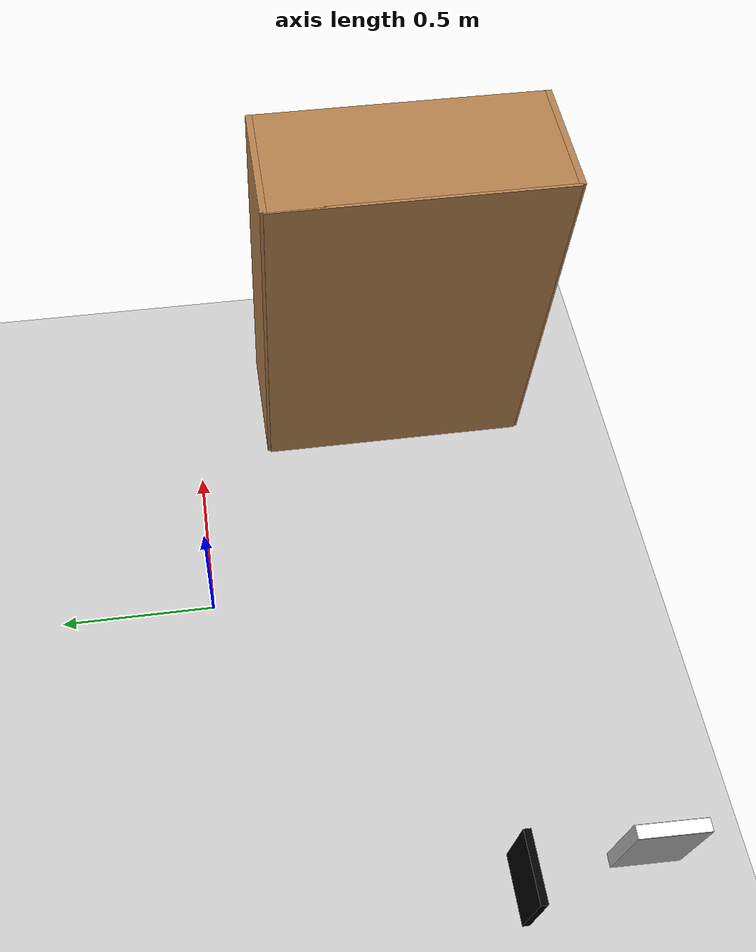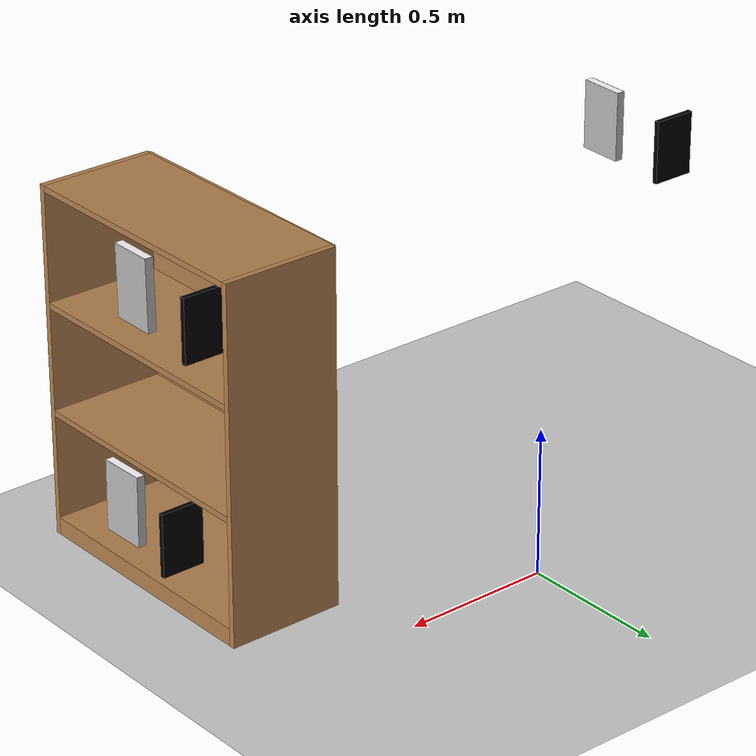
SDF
<sdf version="1.7">
 <world name="default">
  <model name="ground_plane">
   <static>1</static>
   <link name="link">
    <collision name="collision">
     <geometry><plane><normal>0 0 1</normal><size>100 100</size></plane></geometry>
     <surface><friction><ode><mu>100</mu><mu2>50</mu2></ode></friction></surface>
    </collision>
    <visual name="visual">
     <cast_shadows>0</cast_shadows>
     <geometry><plane><normal>0 0 1</normal><size>100 100</size></plane></geometry>
     <material>
      <script><uri>file://media/materials/scripts/gazebo.material</uri><name>Gazebo/Grey</name></script>
     </material>
    </visual>
   </link>
  </model>
  <model name="bookshelf_clone_8">
   <static>1</static>
   <link name="link">
    <inertial><mass>1</mass></inertial>
    <collision name="back">
     <pose>0 0.005 0.6 0 -0 0</pose>
     <geometry><box><size>0.9 0.01 1.2</size></box></geometry>
    </collision>
    <visual name="visual1">
     <pose>0 0.005 0.6 0 -0 0</pose>
     <geometry><box><size>0.9 0.01 1.2</size></box></geometry>
     <material>
      <script><uri>file://media/materials/scripts/gazebo.material</uri><name>Gazebo/Wood</name></script>
     </material>
    </visual>
    <collision name="left_side">
     <pose>0.45 -0.195 0.6 0 -0 0</pose>
     <geometry><box><size>0.02 0.4 1.2</size></box></geometry>
    </collision>
    <visual name="visual2">
     <pose>0.45 -0.195 0.6 0 -0 0</pose>
     <geometry><box><size>0.02 0.4 1.2</size></box></geometry>
     <material>
      <script><uri>file://media/materials/scripts/gazebo.material</uri><name>Gazebo/Wood</name></script>
     </material>
    </visual>
    <collision name="right_side">
     <pose>-0.45 -0.195 0.6 0 -0 0</pose>
     <geometry><box><size>0.02 0.4 1.2</size></box></geometry>
    </collision>
    <visual name="visual3">
     <pose>-0.45 -0.195 0.6 0 -0 0</pose>
     <geometry><box><size>0.02 0.4 1.2</size></box></geometry>
     <material>
      <script><uri>file://media/materials/scripts/gazebo.material</uri><name>Gazebo/Wood</name></script>
     </material>
    </visual>
    <collision name="bottom">
     <pose>0 -0.195 0.03 0 -0 0</pose>
     <geometry><box><size>0.88 0.4 0.06</size></box></geometry>
    </collision>
    <visual name="visual4">
     <pose>0 -0.195 0.03 0 -0 0</pose>
     <geometry><box><size>0.88 0.4 0.06</size></box></geometry>
     <material>
      <script><uri>file://media/materials/scripts/gazebo.material</uri><name>Gazebo/Wood</name></script>
     </material>
    </visual>
    <collision name="top">
     <pose>0 -0.195 1.19 0 -0 0</pose>
     <geometry><box><size>0.88 0.4 0.02</size></box></geometry>
    </collision>
    <visual name="visual5">
     <pose>0 -0.195 1.19 0 -0 0</pose>
     <geometry><box><size>0.88 0.4 0.02</size></box></geometry>
     <material>
      <script><uri>file://media/materials/scripts/gazebo.material</uri><name>Gazebo/Wood</name></script>
     </material>
    </visual>
    <collision name="low_shelf">
     <pose>0 -0.195 0.43 0 -0 0</pose>
     <geometry><box><size>0.88 0.4 0.02</size></box></geometry>
    </collision>
    <visual name="visual6">
     <pose>0 -0.195 0.43 0 -0 0</pose>
     <geometry><box><size>0.88 0.4 0.02</size></box></geometry>
     <material>
      <script><uri>file://media/materials/scripts/gazebo.material</uri><name>Gazebo/Wood</name></script>
     </material>
    </visual>
    <collision name="high_shelf">
     <pose>0 -0.195 0.8 0 -0 0</pose>
     <geometry><box><size>0.88 0.4 0.02</size></box></geometry>
    </collision>
    <visual name="visual7">
     <pose>0 -0.195 0.8 0 -0 0</pose>
     <geometry><box><size>0.88 0.4 0.02</size></box></geometry>
     <material>
      <script><uri>file://media/materials/scripts/gazebo.material</uri><name>Gazebo/Wood</name></script>
     </material>
    </visual>
   </link>
   <pose>0.601754 -0.705437 0 0 -0 1.57111</pose>
  </model>
  <model name="book_12">
   <link name="cover">
    <pose>0 -0.000108 0.015405 0 -0 0</pose>
    <visual name="visual">
     <geometry><box><size>0.245 0.16 0.03</size></box></geometry>
     <material>
      <script>
       <uri>file:///home/bruno/Downloads/lib_world_models/book_12/materials/scripts</uri>
       <uri>file:///home/bruno/Downloads/lib_world_models/book_12/materials/textures</uri>
       <name>book_12</name>
      </script>
     </material>
    </visual>
    <collision name="collision"><geometry><box><size>0.245 0.16 0.03</size></box></geometry></collision>
   </link>
   <link name="page">
    <pose>0 0.000608 0.015405 0 -0 0</pose>
    <visual name="visual">
     <geometry><box><size>0.24502 0.15862 0.028</size></box></geometry>
     <material>
      <lighting>1</lighting>
      <ambient>1 1 1 1</ambient>
      <diffuse>1 1 1 1</diffuse>
      <specular>0.01 0.01 0.01 1</specular>
      <emissive>0 0 0 1</emissive>
      <shader type="vertex"><normal_map>__default__</normal_map></shader>
     </material>
    </visual>
    <collision name="collision"><geometry><box><size>0.245 0.16 0.03</size></box></geometry></collision>
   </link>
   <static>1</static>
   <pose>0.870437 -0.843437 0.940109 -1.57176 -1.5489 -1.60364</pose>
  </model>
  <model name="book_13">
   <link name="cover">
    <pose>0 -0.000108 0.015405 0 -0 0</pose>
    <visual name="visual">
     <geometry><box><size>0.245 0.16 0.03</size></box></geometry>
     <material>
      <script>
       <uri>file:///home/bruno/Downloads/lib_world_models/book_13/materials/scripts</uri>
       <uri>file:///home/bruno/Downloads/lib_world_models/book_13/materials/textures</uri>
       <name>book_13</name>
      </script>
     </material>
    </visual>
    <collision name="collision"><geometry><box><size>0.245 0.16 0.03</size></box></geometry></collision>
   </link>
   <link name="page">
    <pose>0 0.000608 0.015405 0 -0 0</pose>
    <visual name="visual">
     <geometry><box><size>0.24502 0.15862 0.028</size></box></geometry>
     <material>
      <lighting>1</lighting>
      <ambient>1 1 1 1</ambient>
      <diffuse>1 1 1 1</diffuse>
      <specular>0.01 0.01 0.01 1</specular>
      <emissive>0 0 0 1</emissive>
      <shader type="vertex"><normal_map>__default__</normal_map></shader>
     </material>
    </visual>
    <collision name="collision"><geometry><box><size>0.245 0.16 0.03</size></box></geometry></collision>
   </link>
   <static>1</static>
   <pose>0.892336 -0.906318 0.18544 0 -1.5615 -3.12136</pose>
  </model>
  <model name="book_18">
   <link name="cover">
    <pose>0 -0.000108 0.015405 0 -0 0</pose>
    <visual name="visual">
     <geometry><box><size>0.245 0.16 0.03</size></box></geometry>
     <material>
      <script>
       <uri>file:///home/bruno/Downloads/lib_world_models/book_18/materials/scripts</uri>
       <uri>file:///home/bruno/Downloads/lib_world_models/book_18/materials/textures</uri>
       <name>book_18</name>
      </script>
     </material>
    </visual>
    <collision name="collision"><geometry><box><size>0.245 0.16 0.03</size></box></geometry></collision>
   </link>
   <link name="page">
    <pose>0 0.000608 0.015405 0 -0 0</pose>
    <visual name="visual">
     <geometry><box><size>0.24502 0.15862 0.028</size></box></geometry>
     <material>
      <lighting>1</lighting>
      <ambient>1 1 1 1</ambient>
      <diffuse>1 1 1 1</diffuse>
      <specular>0.01 0.01 0.01 1</specular>
      <emissive>0 0 0 1</emissive>
      <shader type="vertex"><normal_map>__default__</normal_map></shader>
     </material>
    </visual>
    <collision name="collision"><geometry><box><size>0.245 0.16 0.03</size></box></geometry></collision>
   </link>
   <static>1</static>
   <pose>-1.11941 -0.919398 0.933751 3.14159 -1.56926 -0.023229</pose>
  </model>
  <model name="retry_6_clone_1">
   <link name="link">
    <inertial>
     <mass>0.1</mass>
     <inertia>
      <ixx>0.00037145</ixx>
      <ixy>0</ixy>
      <ixz>0</ixz>
      <iyy>0.00019446</iyy>
      <iyz>0</iyz>
      <izz>0.00056106</izz>
     </inertia>
    </inertial>
    <visual name="visual">
     <geometry><box><size>0.151804 0.220309 0.017052</size></box></geometry>
     <material>
      <shader type="pixel"><normal_map>__default__</normal_map></shader>
      <script><name>ModelPreview_7::link::visual_MATERIAL_</name><uri>__default__</uri></script>
      <ambient>0 0 0 1</ambient>
      <diffuse>0 0 0 1</diffuse>
      <specular>0 0 0 1</specular>
      <emissive>0 0 0 1</emissive>
     </material>
    </visual>
    <collision name="collision">
     <geometry><box><size>0.151804 0.220309 0.017052</size></box></geometry>
     <surface>
      <friction>
       <ode><mu>3.5</mu><mu2>3.5</mu2><fdir1>0 0 0</fdir1><slip1>-0</slip1><slip2>-0</slip2></ode>
       <torsional>
        <coefficient>1</coefficient>
        <patch_radius>0</patch_radius>
        <surface_radius>0</surface_radius>
        <use_patch_radius>1</use_patch_radius>
        <ode><slip>0</slip></ode>
       </torsional>
      </friction>
      <bounce><restitution_coefficient>0</restitution_coefficient><threshold>1e+06</threshold></bounce>
      <contact>
       <collide_without_contact>0</collide_without_contact>
       <collide_without_contact_bitmask>1</collide_without_contact_bitmask>
       <collide_bitmask>1</collide_bitmask>
       <ode>
        <soft_cfm>0</soft_cfm>
        <soft_erp>0.2</soft_erp>
        <kp>1e+13</kp>
        <kd>1</kd>
        <max_vel>0.01</max_vel>
        <min_depth>0</min_depth>
       </ode>
       <bullet>
        <split_impulse>1</split_impulse>
        <split_impulse_penetration_threshold>-0.01</split_impulse_penetration_threshold>
        <soft_cfm>0</soft_cfm>
        <soft_erp>0.2</soft_erp>
        <kp>1e+13</kp>
        <kd>1</kd>
       </bullet>
      </contact>
     </surface>
    </collision>
   </link>
   <static>0</static>
   <pose>-1.13687 -0.625149 0.920155 -1.57079 -1.1e-05 0.000107</pose>
  </model>
  <model name="retry_6_clone_3">
   <link name="link">
    <inertial>
     <mass>0.1</mass>
     <inertia>
      <ixx>0.00037145</ixx>
      <ixy>0</ixy>
      <ixz>0</ixz>
      <iyy>0.00019446</iyy>
      <iyz>0</iyz>
      <izz>0.00056106</izz>
     </inertia>
    </inertial>
    <visual name="visual">
     <geometry><box><size>0.151804 0.220309 0.017052</size></box></geometry>
     <material>
      <shader type="pixel"><normal_map>__default__</normal_map></shader>
      <script><name>ModelPreview_7::link::visual_MATERIAL_</name><uri>__default__</uri></script>
      <ambient>0 0 0 1</ambient>
      <diffuse>0 0 0 1</diffuse>
      <specular>0 0 0 1</specular>
      <emissive>0 0 0 1</emissive>
     </material>
    </visual>
    <collision name="collision">
     <geometry><box><size>0.151804 0.220309 0.017052</size></box></geometry>
     <surface>
      <friction>
       <ode><mu>3.5</mu><mu2>3.5</mu2><fdir1>0 0 0</fdir1><slip1>-0</slip1><slip2>-0</slip2></ode>
       <torsional>
        <coefficient>1</coefficient>
        <patch_radius>0</patch_radius>
        <surface_radius>0</surface_radius>
        <use_patch_radius>1</use_patch_radius>
        <ode><slip>0</slip></ode>
       </torsional>
      </friction>
      <bounce><restitution_coefficient>0</restitution_coefficient><threshold>1e+06</threshold></bounce>
      <contact>
       <collide_without_contact>0</collide_without_contact>
       <collide_without_contact_bitmask>1</collide_without_contact_bitmask>
       <collide_bitmask>1</collide_bitmask>
       <ode>
        <soft_cfm>0</soft_cfm>
        <soft_erp>0.2</soft_erp>
        <kp>1e+13</kp>
        <kd>1</kd>
        <max_vel>0.01</max_vel>
        <min_depth>0</min_depth>
       </ode>
       <bullet>
        <split_impulse>1</split_impulse>
        <split_impulse_penetration_threshold>-0.01</split_impulse_penetration_threshold>
        <soft_cfm>0</soft_cfm>
        <soft_erp>0.2</soft_erp>
        <kp>1e+13</kp>
        <kd>1</kd>
       </bullet>
      </contact>
     </surface>
    </collision>
   </link>
   <static>0</static>
   <pose>0.859521 -0.54208 0.920155 -1.57079 -1.1e-05 0.000107</pose>
  </model>
  <model name="retry_6_clone_5_clone_5_clone">
   <link name="link">
    <inertial>
     <mass>0.1</mass>
     <inertia>
      <ixx>0.00037145</ixx>
      <ixy>0</ixy>
      <ixz>0</ixz>
      <iyy>0.00019446</iyy>
      <iyz>0</iyz>
      <izz>0.00056106</izz>
     </inertia>
    </inertial>
    <visual name="visual">
     <geometry><box><size>0.151804 0.220309 0.017052</size></box></geometry>
     <material>
      <shader type="pixel"><normal_map>__default__</normal_map></shader>
      <script><name>ModelPreview_7::link::visual_MATERIAL_</name><uri>__default__</uri></script>
      <ambient>0 0 0 1</ambient>
      <diffuse>0 0 0 1</diffuse>
      <specular>0 0 0 1</specular>
      <emissive>0 0 0 1</emissive>
     </material>
    </visual>
    <collision name="collision">
     <geometry><box><size>0.151804 0.220309 0.017052</size></box></geometry>
     <surface>
      <friction>
       <ode><mu>3.5</mu><mu2>3.5</mu2><fdir1>0 0 0</fdir1><slip1>-0</slip1><slip2>-0</slip2></ode>
       <torsional>
        <coefficient>1</coefficient>
        <patch_radius>0</patch_radius>
        <surface_radius>0</surface_radius>
        <use_patch_radius>1</use_patch_radius>
        <ode><slip>0</slip></ode>
       </torsional>
      </friction>
      <bounce><restitution_coefficient>0</restitution_coefficient><threshold>1e+06</threshold></bounce>
      <contact>
       <collide_without_contact>0</collide_without_contact>
       <collide_without_contact_bitmask>1</collide_without_contact_bitmask>
       <collide_bitmask>1</collide_bitmask>
       <ode>
        <soft_cfm>0</soft_cfm>
        <soft_erp>0.2</soft_erp>
        <kp>1e+13</kp>
        <kd>1</kd>
        <max_vel>0.01</max_vel>
        <min_depth>0</min_depth>
       </ode>
       <bullet>
        <split_impulse>1</split_impulse>
        <split_impulse_penetration_threshold>-0.01</split_impulse_penetration_threshold>
        <soft_cfm>0</soft_cfm>
        <soft_erp>0.2</soft_erp>
        <kp>1e+13</kp>
        <kd>1</kd>
       </bullet>
      </contact>
     </surface>
    </collision>
   </link>
   <static>0</static>
   <pose>0.894596 -0.636087 0.170154 -1.5708 1.1e-05 5.9e-05</pose>
  </model>
 </world>
</sdf>
